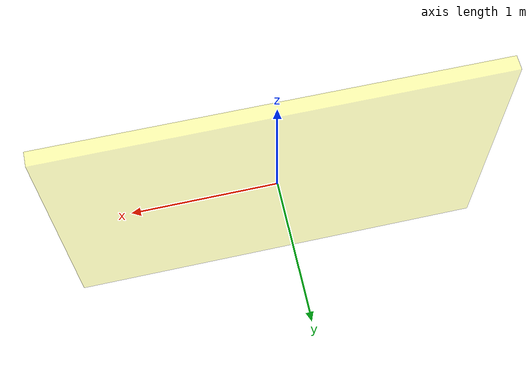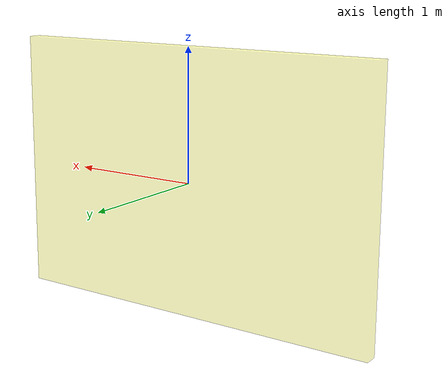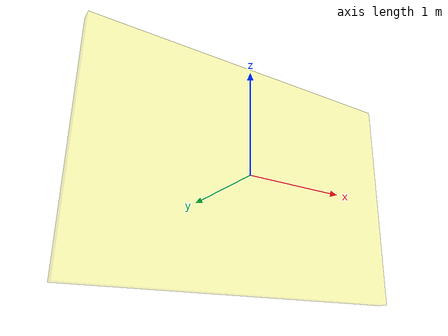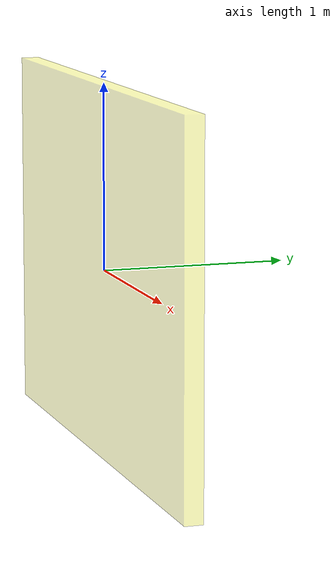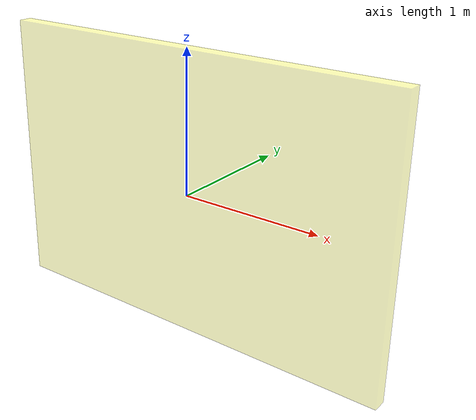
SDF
<sdf version="1.6">
    <model name="conveyor_belt">
        <static>true</static>
        <link name="conveyor_link">
            <visual name="conveyor_visual">
                <geometry>
                    <box>
                        <size>0.1 3 2</size>
                    </box>
                </geometry>
                <material>
                    <ambient>1 1 0 0.3</ambient>
                    <diffuse>1 1 0 0.3</diffuse>
                </material>
            </visual>
            <collision name="conveyor_collision">
                <geometry>
                    <box>
                        <size>0.1 3 2</size>
                    </box>
                </geometry>
            </collision>
            <inertial>
                <mass>10</mass>
                <inertia>
                    <ixx>1</ixx>
                    <iyy>1</iyy>
                    <izz>1</izz>
                    <ixy>0</ixy>
                    <ixz>0</ixz>
                    <iyz>0</iyz>
                </inertia>
            </inertial>
        </link>
        <pose>0 0 0 0 0 1.5708</pose>
    </model>
</sdf>
